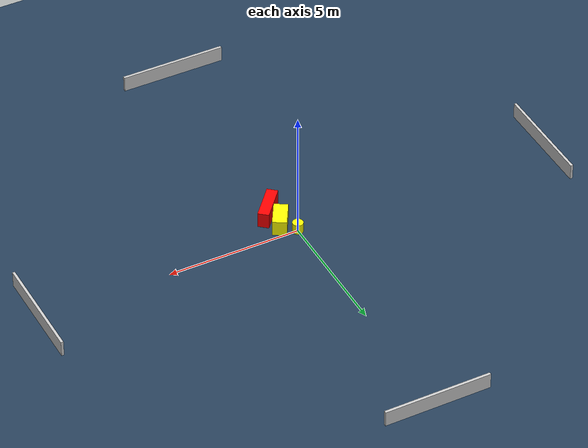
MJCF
<?xml version="1.0" ?>
<mujoco model="generated_environment">
  <option timestep="0.01" integrator="RK4" cone="elliptic"/>
  <default>
    <geom density="1"/>
  </default>
  <asset>
    <texture builtin="gradient" height="3072" name="skybox" rgb1="0.3 0.5 0.7" rgb2="0 0 0" type="skybox" width="512"/>
    <texture builtin="checker" height="300" name="groundplane" rgb1="0.2 0.3 0.4" rgb2="0.1 0.2 0.3" type="2d" width="300"/>
    <material name="groundplane" reflectance="0.2" texrepeat="5 5" texture="groundplane"/>
  </asset>
  <worldbody>
    <light dir="0 0 -1" directional="true" pos="0 0 1.5"/>
    <geom condim="3" friction="0.5 0.005 0.001" material="groundplane" name="floor" pos="0 0 0" size="0 0 0.05" type="plane"/>
    <body name="walls">
      <geom name="wall_1" condim="4" pos="-10.0 0.0 0.3" rgba="0.800000011920929 0.800000011920929 0.800000011920929 1.0" size="0.05 2.0 0.3" type="box"/>
      <geom name="wall_2" condim="4" pos="10.0 0.0 0.3" rgba="0.800000011920929 0.800000011920929 0.800000011920929 1.0" size="0.05 2.0 0.3" type="box"/>
      <geom name="wall_3" condim="4" pos="0.0 -10.0 0.3" rgba="0.800000011920929 0.800000011920929 0.800000011920929 1.0" size="2.0 0.05 0.3" type="box"/>
      <geom name="wall_4" condim="4" pos="0.0 10.0 0.3" rgba="0.800000011920929 0.800000011920929 0.800000011920929 1.0" size="2.0 0.05 0.3" type="box"/>
    </body>
    <body name="robot">
      <joint name="joint_x" type="slide" pos="0 0 0" axis="1 0 0"/>
      <joint name="joint_y" type="slide" pos="0 0 0" axis="0 1 0"/>
      <geom name="robot" type="cylinder" pos="0.0 0.0 0.2" size="0.2 0.2 0.0" mass="5.0" friction="1.0 0.005 0.0001" condim="4" rgba="1.0 1.0 0.0 1.0"/>
    </body>
    <body name="obstacle_1_movable">
      <geom name="obstacle_1_movable" condim="4" pos="0.42919232959294745 -0.516827038758989 0.3" euler="0 0 329.58856467635934" friction="0.0 0.005 0.001" rgba="1.0 1.0 0.0 1.0" size="0.26258607585082194 0.5016797216624274 0.3" type="box" mass="0.1"/>
      <joint type="free"/>
    </body>
    <body name="obstacle_2_static">
      <geom name="obstacle_2_static" condim="4" pos="0.5355910765832257 -1.256659128919616 0.3" euler="0 0 229.2634352213249" friction="0.0 0.005 0.001" rgba="1.0 0.0 0.0 1.0" size="0.6947272707100123 0.20707212366702732 0.3" type="box"/>
    </body>
  </worldbody>
  <actuator>
    <motor name="actuator_x" joint="joint_x" gear="1" ctrlrange="-1 1"/>
    <motor name="actuator_y" joint="joint_y" gear="1" ctrlrange="-1 1"/>
  </actuator>
</mujoco>
